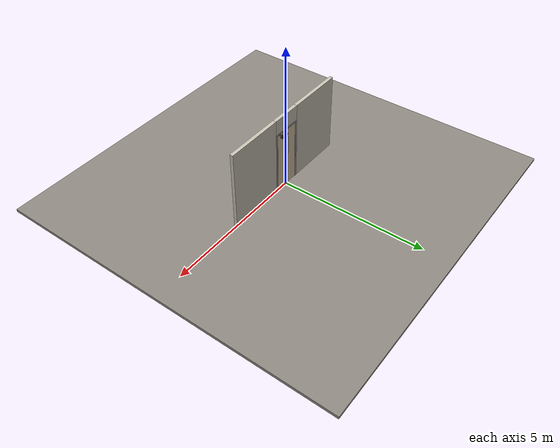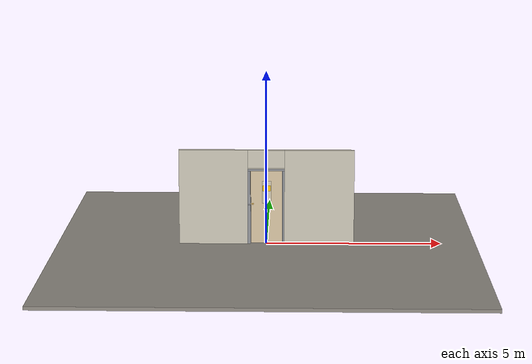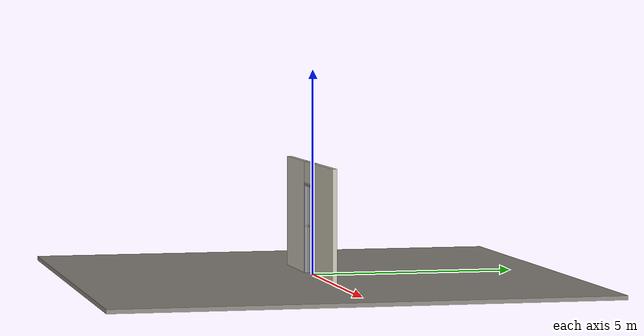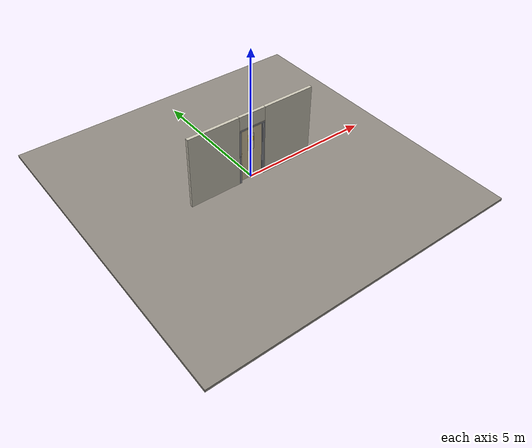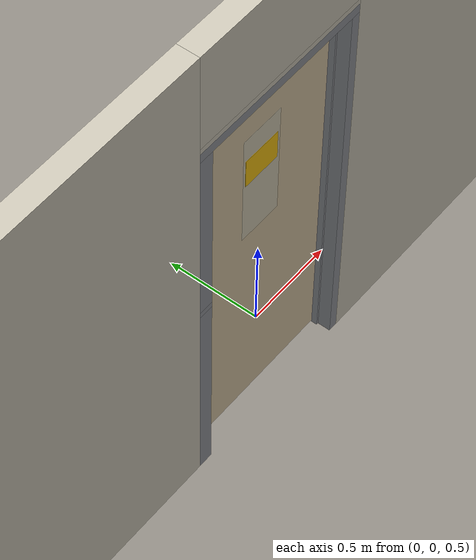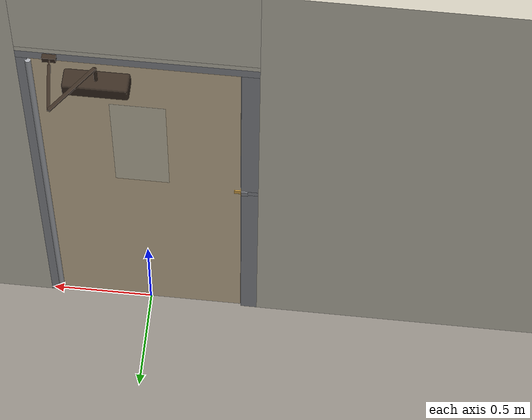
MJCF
<?xml version="1.0" ?>
<mujoco model="db0295_swing_single_full">
  <compiler angle="radian" meshdir="../../hardware" texturedir="../../textures" autolimits="true" inertiafromgeom="false"/>
  <option timestep="0.002" integrator="implicitfast" cone="elliptic" impratio="10" noslip_iterations="3">
    <flag multiccd="enable"/>
  </option>
  <size memory="16M"/>
  <default>
    <geom condim="4" solref="0.005 1" solimp="0.95 0.99 0.001"/>
    <joint solreflimit="0.005 1" solimplimit="0.95 0.99 0.001"/>
    <tendon solreflimit="0.005 1"/>
    <equality solref="0.002 1"/>
  </default>
  <visual>
    <headlight ambient="0.4 0.4 0.4" diffuse="0.7 0.7 0.7" specular="0.2 0.2 0.2"/>
    <quality shadowsize="4096"/>
    <map znear="0.01" zfar="60"/>
  </visual>
  <asset>
    <mesh name="closer_body_fdc4667657" file="closer_body_fdc4667657.obj"/>
    <mesh name="cyl_face_e9e5036966" file="cyl_face_e9e5036966.obj"/>
    <material name="mat_floor" rgba="0.55 0.53 0.5 1" specular="0.2" shininess="0.15" reflectance="0"/>
    <material name="mat_wall" rgba="0.78 0.76 0.7 1" specular="0.2" shininess="0.1" reflectance="0"/>
    <material name="mat_leaf" rgba="0.82 0.75 0.62 1" specular="0.23" shininess="0.39" reflectance="0.02"/>
    <material name="mat_glass" rgba="0.85 0.92 0.95 0.25" specular="0.2" shininess="0.95" reflectance="0.1"/>
    <material name="mat_hinge" rgba="0.65 0.66 0.68 1" specular="0.74" shininess="0.5" reflectance="0.36"/>
    <material name="mat_deadbolt" rgba="0.85 0.66 0.3 1" specular="0.8" shininess="0.75" reflectance="0.4"/>
    <material name="mat_frame" rgba="0.55 0.56 0.58 1" specular="0.8" shininess="0.55" reflectance="0.4"/>
    <material name="mat_closer" rgba="0.22 0.17 0.13 1" specular="0.8" shininess="0.6" reflectance="0.4"/>
    <material name="mat_placard" rgba="0.95 0.75 0.05 1" specular="0.2" shininess="0.5" reflectance="0"/>
    <texture name="skybox" type="skybox" builtin="gradient" rgb1="0.6 0.7 0.85" rgb2="0.9 0.92 0.95" width="256" height="256"/>
  </asset>
  <worldbody>
    <light name="sun" pos="1.5 -2.5 4" dir="-0.3 0.5 -0.8" directional="true" diffuse="0.8 0.8 0.8" specular="0.3 0.3 0.3" castshadow="true"/>
    <light name="fill" pos="-1.5 2.5 3" dir="0.3 -0.5 -0.7" directional="true" diffuse="0.35 0.35 0.4" castshadow="false"/>
    <camera name="robot_view" pos="0 -2.685312 1.812087" xyaxes="1 0 0 0 0.26963 0.962964" fovy="52"/>
    <camera name="far_view" pos="0 2.590313 1.812087" xyaxes="-1 0 0 0 -0.26963 0.962964" fovy="52"/>
    <camera name="iso" pos="-2.004737 -2.263262 2.234138" xyaxes="0.741536 -0.670913 0 0.242917 0.268487 0.932151" fovy="46"/>
    <camera name="detail_handle" pos="-0.174 -0.8475 1.296" xyaxes="0.97561 0.219512 0 -0.070934 0.315262 0.94635" fovy="38"/>
    <geom name="floor" type="box" size="6 6 0.05" pos="0 0 -0.05" material="mat_floor" group="0" contype="1" conaffinity="1" friction="0.8 0.005 0.0001" density="2400"/>
    <geom name="wall_left" type="box" size="0.98 0.0575 1.3735" pos="-1.52 -0.0475 1.3735" material="mat_wall" group="0" contype="1" conaffinity="1" friction="0.6 0.005 0.0001" density="800"/>
    <geom name="wall_right" type="box" size="0.995 0.0575 1.3735" pos="1.505 -0.0475 1.3735" material="mat_wall" group="0" contype="1" conaffinity="1" friction="0.6 0.005 0.0001" density="800"/>
    <geom name="wall_header" type="box" size="0.525 0.0575 0.26" pos="-0.015 -0.0475 2.487" material="mat_wall" group="0" contype="1" conaffinity="1" friction="0.6 0.005 0.0001" density="800"/>
    <geom name="leaf_deadbolt_strike_b" type="box" size="0.0155 0.003 0.0005" pos="-0.4595 0 1.1375" quat="0.5 0.5 0.5 0.5" material="mat_deadbolt" group="1" contype="0" conaffinity="0" density="7800"/>
    <geom name="leaf_deadbolt_strike_l" type="box" size="0.003 0.0155 0.0005" pos="-0.4595 -0.0125 1.156" quat="0.5 0.5 0.5 0.5" material="mat_deadbolt" group="1" contype="0" conaffinity="0" density="7800"/>
    <geom name="leaf_deadbolt_strike_t" type="box" size="0.0155 0.003 0.0005" pos="-0.4595 0 1.1745" quat="0.5 0.5 0.5 0.5" material="mat_deadbolt" group="1" contype="0" conaffinity="0" density="7800"/>
    <geom name="leaf_deadbolt_strike_r" type="box" size="0.003 0.0155 0.0005" pos="-0.4595 0.0125 1.156" quat="0.5 0.5 0.5 0.5" material="mat_deadbolt" group="1" contype="0" conaffinity="0" density="7800"/>
    <geom name="jamb_hinge" type="box" size="0.025 0.0575 1.0735" pos="0.485 -0.0475 1.0735" material="mat_frame" group="0" contype="1" conaffinity="1" friction="0.6 0.005 0.0001" density="300"/>
    <geom name="strike_1156_wall_n" type="box" size="0.04 0.04775 0.0155" pos="-0.5 -0.05725 1.156" material="mat_frame" group="0" contype="1" conaffinity="1" friction="0.6 0.005 0.0001" density="300"/>
    <geom name="strike_1156_wall_p" type="box" size="0.0157 0.003 0.0155" pos="-0.4757 0.0125 1.156" material="mat_frame" group="0" contype="1" conaffinity="1" friction="0.6 0.005 0.0001" density="300"/>
    <geom name="strike_1156_back" type="box" size="0.0253 0.0095 0.0155" pos="-0.5147 0 1.156" material="mat_frame" group="0" contype="1" conaffinity="1" friction="0.6 0.005 0.0001" density="300"/>
    <geom name="jamb_strike_0" type="box" size="0.04 0.0575 0.57025" pos="-0.5 -0.0475 0.57025" material="mat_frame" group="0" contype="1" conaffinity="1" friction="0.6 0.005 0.0001" density="300"/>
    <geom name="jamb_strike_1" type="box" size="0.04 0.0575 0.48775" pos="-0.5 -0.0475 1.65925" material="mat_frame" group="0" contype="1" conaffinity="1" friction="0.6 0.005 0.0001" density="300"/>
    <geom name="jamb_head" type="box" size="0.525 0.0575 0.025" pos="-0.015 -0.0475 2.172" material="mat_frame" group="0" contype="1" conaffinity="1" friction="0.6 0.005 0.0001" density="300"/>
    <geom name="head_stud" type="box" size="0.525 0.0575 0.015" pos="-0.015 -0.0475 2.212" material="mat_wall" group="0" contype="1" conaffinity="1" friction="0.6 0.005 0.0001" density="500"/>
    <geom name="stop_hinge" type="box" size="0.0055 0.016 1.0735" pos="0.4545 -0.0195 1.0735" material="mat_frame" group="0" contype="1" conaffinity="1" friction="0.6 0.005 0.0001" density="300"/>
    <geom name="stop_strike" type="box" size="0.0055 0.016 0.56425" pos="-0.4545 -0.0195 0.56425" material="mat_frame" group="0" contype="1" conaffinity="1" friction="0.6 0.005 0.0001" density="300"/>
    <geom name="stop_strike_1" type="box" size="0.0055 0.016 0.48175" pos="-0.4545 -0.0195 1.66525" material="mat_frame" group="0" contype="1" conaffinity="1" friction="0.6 0.005 0.0001" density="300"/>
    <geom name="stop_head" type="box" size="0.46 0.016 0.0055" pos="0 -0.0195 2.1415" material="mat_frame" group="0" contype="1" conaffinity="1" friction="0.6 0.005 0.0001" density="300"/>
    <geom name="closer_bracket" type="box" size="0.03 0.012 0.014" pos="0.36 0.022 2.177" material="mat_closer" group="1" contype="0" conaffinity="0" density="2700"/>
    <site name="approach_point" pos="0 -1.5 0" quat="1 0 0 0" size="0.05" rgba="0.2 0.9 0.2 0.5" group="4"/>
    <site name="goal_point" pos="0 1.5 0" quat="1 0 0 0" size="0.05" rgba="0.2 0.9 0.2 0.5" group="4"/>
    <site name="door_plane_center" pos="0 0 1.0735" quat="1 0 0 0" size="0.02" rgba="0.2 0.9 0.2 0.5" group="4"/>
    <body name="leaf" pos="0.46 0 0">
      <inertial pos="-0.422643 0.007925 1.216998" mass="92.843963" quat="0.510817 -0.511812 -0.494945 -0.481813" diaginertia="6.223742586 41.149420569 47.305157637"/>
      <joint name="leaf_hinge" type="hinge" axis="0 0 -1" pos="-0.003 0.01 0" limited="true" range="0 1.745329" damping="12.268966" frictionloss="2.352861" stiffness="19.709748" springref="-2.008651" armature="0.02"/>
      <geom name="leaf_slab" type="box" size="0.457 0.003 1.067" pos="-0.46 0 1.076" material="mat_leaf" group="0" contype="1" conaffinity="1" friction="0.45 0.005 0.0001" density="1"/>
      <geom name="leaf_glass_0" type="box" size="0.125 0.0038 0.3201" pos="-0.46 0 1.5028" material="mat_glass" group="1" contype="0" conaffinity="0" density="1"/>
      <geom name="hinge_continuous" type="cylinder" size="0.0136 1.057" pos="-0.003 0.01 1.076" material="mat_hinge" group="1" contype="0" conaffinity="0" density="2700"/>
      <geom name="leaf_deadbolt_faceplate" type="box" size="0.0006 0.001 0.0245" pos="-0.9164 0 1.156" material="mat_deadbolt" group="1" contype="0" conaffinity="0" density="8500"/>
      <geom name="leaf_deadbolt_cylinder_face" type="mesh" mesh="cyl_face_e9e5036966" pos="-0.852 -0.003 1.156" quat="0 0 -0.707107 0.707107" material="mat_deadbolt" group="1" contype="0" conaffinity="0" density="7100"/>
      <geom name="closer_body" type="mesh" mesh="closer_body_fdc4667657" pos="-0.3 0.003 2.054" quat="0 0 0.707107 0.707107" material="mat_closer" group="1" contype="0" conaffinity="0" density="2000"/>
      <geom name="closer_body_col" type="box" size="0.145 0.05 0.035" pos="-0.3 0.053 2.054" material="mat_closer" group="3" contype="1" conaffinity="1" rgba="0.8 0.3 0.3 0.25" friction="0.6 0.005 0.0001" density="2000"/>
      <geom name="closer_pinion_shaft" type="cylinder" size="0.008 0.0615" pos="-0.3 0.053 2.1155" material="mat_closer" group="1" contype="0" conaffinity="0" density="2700"/>
      <geom name="warning_placard" type="box" size="0.11 0.001 0.08" pos="-0.46 -0.004 1.6095" material="mat_placard" group="2" contype="0" conaffinity="0" density="1000"/>
      <site name="leaf_edge_mid" pos="-0.917 0 1.067" quat="1 0 0 0" size="0.02" rgba="0.2 0.9 0.2 0.5" group="4"/>
      <body name="leaf_deadbolt" pos="-0.917 0 1.156">
        <inertial pos="0.0023 0 0" mass="0.18836" quat="0 0 0.707107 0.707107" diaginertia="0.000013829 0.000052194 0.000057986"/>
        <geom name="leaf_deadbolt_box" type="box" size="0.0277 0.008 0.0125" pos="0.0023 0 0" material="mat_deadbolt" group="0" contype="1" conaffinity="1" friction="0.3 0.005 0.0001" density="8500"/>
      </body>
      <body name="closer_arm_main" pos="-0.3 0.053 2.177" quat="0.890947 0 0 0.454107">
        <inertial pos="0.14 0 0" mass="0.12096" quat="1 0 0 0" diaginertia="0.000003588 0.00079128 0.000792852"/>
        <joint name="closer_pinion" type="hinge" axis="0 0 1" limited="false" damping="0.01" armature="0.002"/>
        <geom name="closer_arm_main_geom" type="box" size="0.14 0.008 0.005" pos="0.14 0 0" material="mat_closer" group="1" contype="0" conaffinity="0" density="2700"/>
        <body name="closer_arm_fore" pos="0.28 0 0" quat="0.373215 0 0 -0.927745">
          <inertial pos="0.128088 0 0" mass="0.076531" quat="1 0 0 0" diaginertia="0.000001771 0.000437665 0.000438201"/>
          <joint name="closer_elbow" type="hinge" axis="0 0 1" limited="false" damping="0.01" armature="0.002"/>
          <geom name="closer_arm_fore_geom" type="box" size="0.1125 0.007 0.004" pos="0.1125 0 0" material="mat_closer" group="1" contype="0" conaffinity="0" density="2700"/>
          <geom name="closer_fore_neck" type="box" size="0.0175 0.003 0.003" pos="0.2425 0 0" material="mat_closer" group="1" contype="0" conaffinity="0" density="2700"/>
          <geom name="closer_fore_pivot" type="cylinder" size="0.005 0.012" pos="0.26 0 0" material="mat_closer" group="1" contype="0" conaffinity="0" density="2700"/>
        </body>
      </body>
    </body>
  </worldbody>
  <equality>
    <connect name="closer_arm_connect" body1="closer_arm_fore" body2="world" anchor="0.26 0 0" active="true"/>
  </equality>
  <contact>
    <exclude body1="closer_arm_main" body2="leaf"/>
    <exclude body1="closer_arm_fore" body2="leaf"/>
    <exclude body1="closer_arm_main" body2="closer_arm_fore"/>
  </contact>
  <sensor>
    <jointpos name="leaf_hinge_pos" joint="leaf_hinge"/>
    <jointvel name="leaf_hinge_vel" joint="leaf_hinge"/>
  </sensor>
</mujoco>
